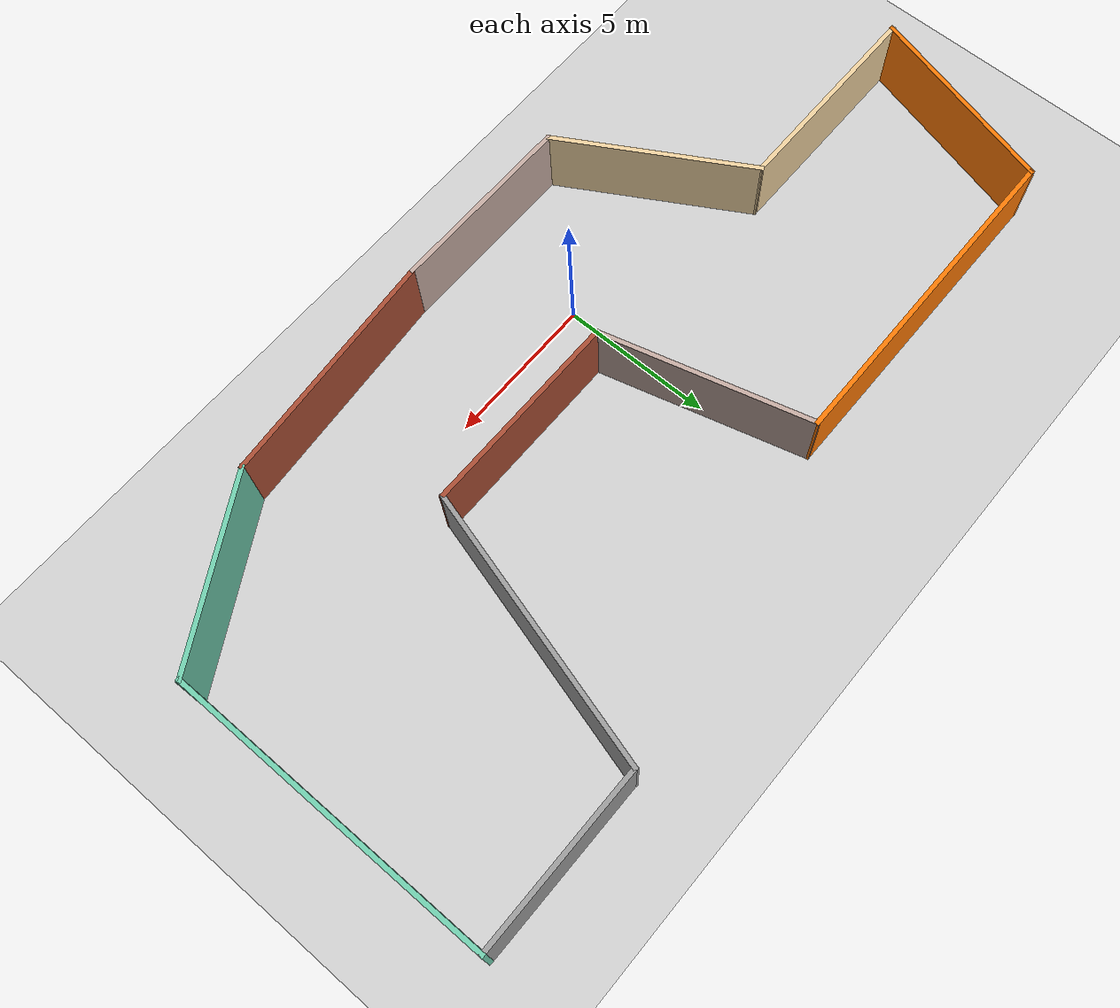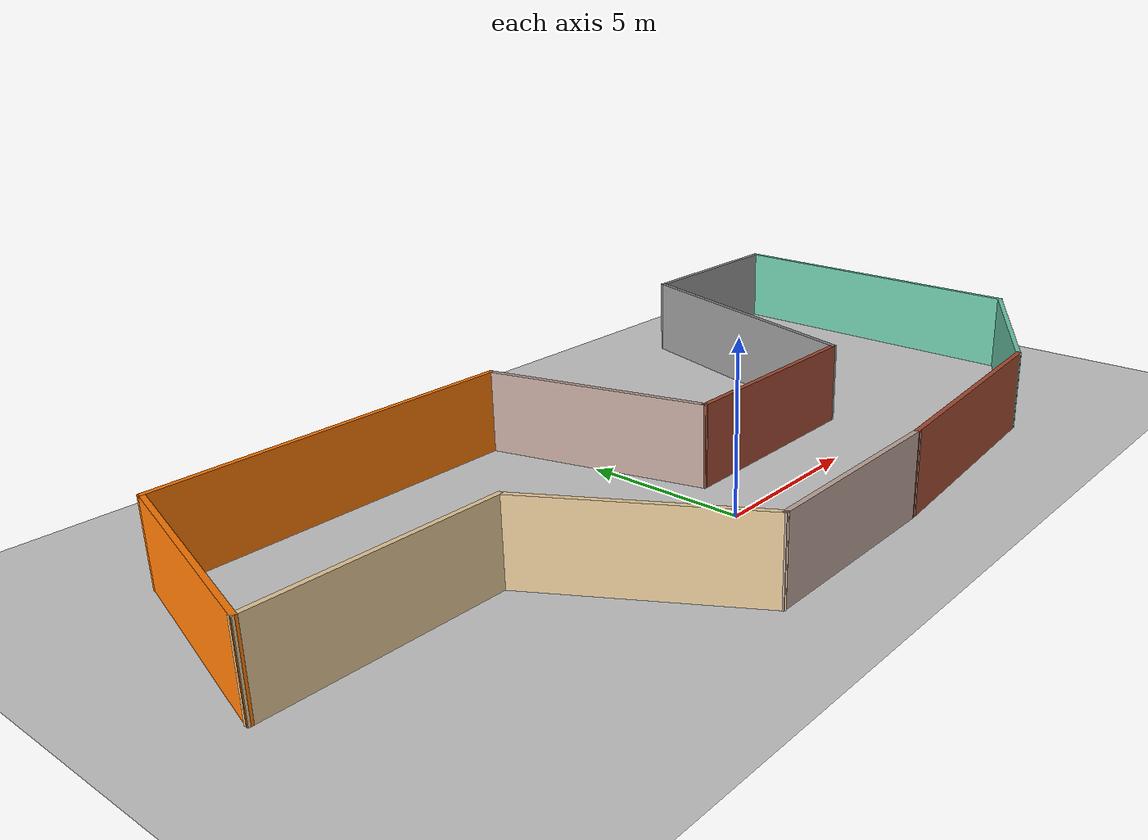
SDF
<sdf version="1.6">
 <world name="default">
  <light name="sun" type="directional">
   <pose>0 0 10 0 -0 0</pose>
   <diffuse>0.8 0.8 0.8 1</diffuse>
   <specular>0.2 0.2 0.2 1</specular>
   <attenuation>
    <range>1000</range>
    <constant>0.9</constant>
    <linear>0.01</linear>
    <quadratic>0.001</quadratic>
   </attenuation>
   <direction>-0.5 0.1 -0.9</direction>
  </light>
  <model name="ground_plane">
   <static>1</static>
   <link name="link">
    <collision name="collision">
     <geometry><plane><normal>0 0 1</normal><size>100 100</size></plane></geometry>
     <surface>
      <contact><collide_bitmask>65535</collide_bitmask></contact>
      <friction><ode><mu>100</mu><mu2>50</mu2></ode></friction>
     </surface>
    </collision>
    <visual name="visual">
     <cast_shadows>0</cast_shadows>
     <geometry><plane><normal>0 0 1</normal><size>100 100</size></plane></geometry>
     <material>
      <script><uri>file://media/materials/scripts/gazebo.material</uri><name>Gazebo/Grey</name></script>
     </material>
    </visual>
   </link>
  </model>
  <gravity>0 0 -9.8</gravity>
  <magnetic_field>6e-06 2.3e-05 -4.2e-05</magnetic_field>
  <atmosphere type="adiabatic"/>
  <physics name="default_physics" default="0" type="ode">
   <max_step_size>0.001</max_step_size>
   <real_time_factor>1</real_time_factor>
   <real_time_update_rate>1000</real_time_update_rate>
  </physics>
  <scene><ambient>0.4 0.4 0.4 1</ambient><background>0.7 0.7 0.7 1</background><shadows>1</shadows></scene>
  <spherical_coordinates>
   <surface_model>EARTH_WGS84</surface_model>
   <latitude_deg>0</latitude_deg>
   <longitude_deg>0</longitude_deg>
   <elevation>0</elevation>
   <heading_deg>0</heading_deg>
  </spherical_coordinates>
  <model name="irregular-2">
   <pose>1.21348 3.44681 0 0 -0 0</pose>
   <link name="Wall_1">
    <collision name="Wall_1_Collision">
     <geometry><box><size>6.25 0.15 2.5</size></box></geometry>
     <pose>0 0 1.25 0 -0 0</pose>
    </collision>
    <visual name="Wall_1_Visual">
     <pose>0 0 1.25 0 -0 0</pose>
     <geometry><box><size>6.25 0.15 2.5</size></box></geometry>
     <material>
      <script><uri>file://media/materials/scripts/gazebo.material</uri><name>Gazebo/Grey</name></script>
      <ambient>0.760784 0.662745 0.627451 1</ambient>
     </material>
     <meta><layer>0</layer></meta>
    </visual>
    <pose>-1.37348 -7.12681 0 0 -0 3.14159</pose>
   </link>
   <link name="Wall_10">
    <collision name="Wall_10_Collision">
     <geometry><box><size>10.75 0.15 2.5</size></box></geometry>
     <pose>0 0 1.25 0 -0 0</pose>
    </collision>
    <visual name="Wall_10_Visual">
     <pose>0 0 1.25 0 -0 0</pose>
     <geometry><box><size>10.75 0.15 2.5</size></box></geometry>
     <material>
      <script><uri>file://media/materials/scripts/gazebo.material</uri><name>Gazebo/Grey</name></script>
      <ambient>0.435294 0.796078 0.67451 1</ambient>
     </material>
     <meta><layer>0</layer></meta>
    </visual>
    <pose>14.5629 1.8374 0 0 0 -1.5708</pose>
   </link>
   <link name="Wall_11">
    <collision name="Wall_11_Collision">
     <geometry><box><size>6.25 0.15 2.5</size></box></geometry>
     <pose>0 0 1.25 0 -0 0</pose>
    </collision>
    <visual name="Wall_11_Visual">
     <pose>0 0 1.25 0 -0 0</pose>
     <geometry><box><size>6.25 0.15 2.5</size></box></geometry>
     <material>
      <script><uri>file://media/materials/scripts/gazebo.material</uri><name>Gazebo/Grey</name></script>
      <ambient>0.435294 0.796078 0.67451 1</ambient>
     </material>
     <meta><layer>0</layer></meta>
    </visual>
    <pose>11.9215 -4.9876 0 0 0 -2.61799</pose>
   </link>
   <link name="Wall_12">
    <collision name="Wall_12_Collision">
     <geometry><box><size>7.77838 0.15 2.5</size></box></geometry>
     <pose>0 0 1.25 0 -0 0</pose>
    </collision>
    <visual name="Wall_12_Visual">
     <pose>0 0 1.25 0 -0 0</pose>
     <geometry><box><size>7.77838 0.15 2.5</size></box></geometry>
     <material>
      <script><uri>file://media/materials/scripts/gazebo.material</uri><name>Gazebo/Bricks</name></script>
      <ambient>0.435294 0.796078 0.67451 1</ambient>
     </material>
     <meta><layer>0</layer></meta>
    </visual>
    <pose>5.47832 -6.8197 0 0 0 -3.06099</pose>
   </link>
   <link name="Wall_2">
    <collision name="Wall_2_Collision">
     <geometry><box><size>6.75 0.15 2.5</size></box></geometry>
     <pose>0 0 1.25 0 -0 0</pose>
    </collision>
    <visual name="Wall_2_Visual">
     <pose>0 0 1.25 0 -0 0</pose>
     <geometry><box><size>6.75 0.15 2.5</size></box></geometry>
     <material>
      <script><uri>file://media/materials/scripts/gazebo.material</uri><name>Gazebo/Grey</name></script>
      <ambient>0.921569 0.807843 0.615686 1</ambient>
     </material>
     <meta><layer>0</layer></meta>
    </visual>
    <pose>-6.07348 -4.26892 0 0 -0 2.0944</pose>
   </link>
   <link name="Wall_3">
    <collision name="Wall_3_Collision">
     <geometry><box><size>7 0.15 2.5</size></box></geometry>
     <pose>0 0 1.25 0 -0 0</pose>
    </collision>
    <visual name="Wall_3_Visual">
     <pose>0 0 1.25 0 -0 0</pose>
     <geometry><box><size>7 0.15 2.5</size></box></geometry>
     <material>
      <script><uri>file://media/materials/scripts/gazebo.material</uri><name>Gazebo/Grey</name></script>
      <ambient>0.921569 0.807843 0.615686 1</ambient>
     </material>
     <meta><layer>0</layer></meta>
    </visual>
    <pose>-11.1485 -1.41104 0 0 -0 3.14159</pose>
   </link>
   <link name="Wall_4">
    <collision name="Wall_4_Collision">
     <geometry><box><size>6.75 0.15 2.5</size></box></geometry>
     <pose>0 0 1.25 0 -0 0</pose>
    </collision>
    <visual name="Wall_4_Visual">
     <pose>0 0 1.25 0 -0 0</pose>
     <geometry><box><size>6.75 0.15 2.5</size></box></geometry>
     <material>
      <script><uri>file://media/materials/scripts/gazebo.material</uri><name>Gazebo/Grey</name></script>
      <ambient>0.996078 0.47451 0.0196078 1</ambient>
     </material>
     <meta><layer>0</layer></meta>
    </visual>
    <pose>-13.7194 1.77652 0 0 -0 1.309</pose>
   </link>
   <link name="Wall_5">
    <collision name="Wall_5_Collision">
     <geometry><box><size>11 0.15 2.5</size></box></geometry>
     <pose>0 0 1.25 0 -0 0</pose>
    </collision>
    <visual name="Wall_5_Visual">
     <pose>0 0 1.25 0 -0 0</pose>
     <geometry><box><size>11 0.15 2.5</size></box></geometry>
     <material>
      <script><uri>file://media/materials/scripts/gazebo.material</uri><name>Gazebo/Grey</name></script>
      <ambient>0.996078 0.47451 0.0196078 1</ambient>
     </material>
     <meta><layer>0</layer></meta>
    </visual>
    <pose>-7.44028 4.96407 0 0 -0 0</pose>
   </link>
   <link name="Wall_6">
    <collision name="Wall_6_Collision">
     <geometry><box><size>7 0.15 2.5</size></box></geometry>
     <pose>0 0 1.25 0 -0 0</pose>
    </collision>
    <visual name="Wall_6_Visual">
     <pose>0 0 1.25 0 -0 0</pose>
     <geometry><box><size>7 0.15 2.5</size></box></geometry>
     <material>
      <script><uri>file://media/materials/scripts/gazebo.material</uri><name>Gazebo/Grey</name></script>
      <ambient>0.760784 0.662745 0.627451 1</ambient>
     </material>
     <meta><layer>0</layer></meta>
    </visual>
    <pose>-1.12882 1.65577 0 0 0 -1.309</pose>
   </link>
   <link name="Wall_7">
    <collision name="Wall_7_Collision">
     <geometry><box><size>6.75 0.15 2.5</size></box></geometry>
     <pose>0 0 1.25 0 -0 0</pose>
    </collision>
    <visual name="Wall_7_Visual">
     <pose>0 0 1.25 0 -0 0</pose>
     <geometry><box><size>6.75 0.15 2.5</size></box></geometry>
     <material>
      <script><uri>file://media/materials/scripts/gazebo.material</uri><name>Gazebo/Bricks</name></script>
      <ambient>1 1 1 1</ambient>
     </material>
     <meta><layer>0</layer></meta>
    </visual>
    <pose>3.05763 -1.65252 0 0 -0 0</pose>
   </link>
   <link name="Wall_8">
    <collision name="Wall_8_Collision">
     <geometry><box><size>9.25 0.15 2.5</size></box></geometry>
     <pose>0 0 1.25 0 -0 0</pose>
    </collision>
    <visual name="Wall_8_Visual">
     <pose>0 0 1.25 0 -0 0</pose>
     <geometry><box><size>9.25 0.15 2.5</size></box></geometry>
     <material>
      <script><uri>file://media/materials/scripts/gazebo.material</uri><name>Gazebo/Grey</name></script>
      <ambient>1 1 1 1</ambient>
     </material>
     <meta><layer>0</layer></meta>
    </visual>
    <pose>7.53526 2.74244 0 0 -0 1.309</pose>
   </link>
   <link name="Wall_9">
    <collision name="Wall_9_Collision">
     <geometry><box><size>6 0.15 2.5</size></box></geometry>
     <pose>0 0 1.25 0 -0 0</pose>
    </collision>
    <visual name="Wall_9_Visual">
     <pose>0 0 1.25 0 -0 0</pose>
     <geometry><box><size>6 0.15 2.5</size></box></geometry>
     <material>
      <script><uri>file://media/materials/scripts/gazebo.material</uri><name>Gazebo/Grey</name></script>
      <ambient>1 1 1 1</ambient>
     </material>
     <meta><layer>0</layer></meta>
    </visual>
    <pose>11.6379 7.1374 0 0 -0 0</pose>
   </link>
   <static>1</static>
  </model>
 </world>
</sdf>
